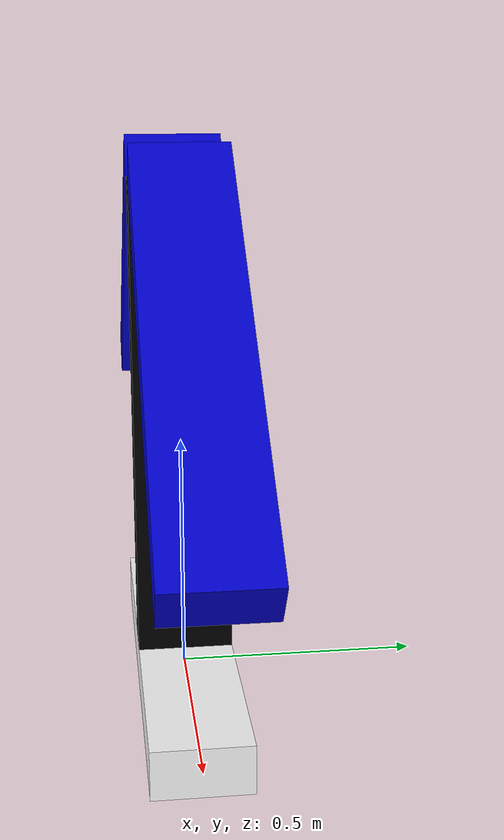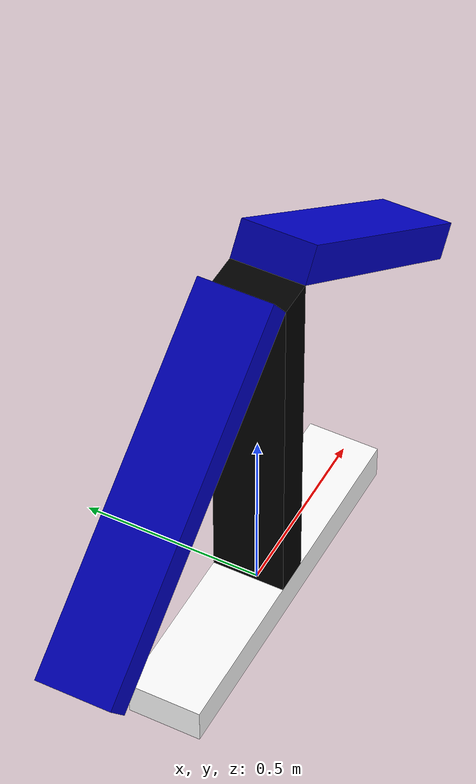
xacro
<?xml version="1.0"?>
<robot name="imagination" xmlns:xacro="http://ros.org/wiki/xacro">
  <xacro:property name="length" value="1.0" />
  <xacro:property name="height" value="0.1" />
  <xacro:property name="depth" value="0.2" />
  <xacro:property name="pi" value="3.1415" />

  <material name="blue">
    <color rgba="0 0 0.8 1"/>
  </material>

  <material name="black">
    <color rgba="0 0 0 1"/>
  </material>

  <material name="white">
    <color rgba="1 1 1 1"/>
  </material>

  <xacro:macro name="base_block" params="name color *position">
    <link name="${name}">
      <visual>
        <geometry>
          <box size="${length} ${depth} ${height}"/>
        </geometry>
        <xacro:insert_block name="position" />
        <material name="${color}"/>
      </visual>
    </link>
  </xacro:macro>

  <xacro:base_block name="base_link" color="white" >
    <origin rpy="0 0 0" xyz="0 0 0"/>
  </xacro:base_block>

  <xacro:base_block name="body" color="black" >
    <origin rpy="0 ${pi/2} 0" xyz="0 0 ${length/2+height/2}"/>
  </xacro:base_block>

  <xacro:base_block name="left_arm" color="blue" >
    <origin rpy="0 ${pi/2} 0" xyz="${-height/2} 0 ${length/2}"/>

  </xacro:base_block>

  <xacro:base_block name="right_arm" color="blue" >
    <origin rpy="0 ${pi/2} 0" xyz="${height/2} 0 ${length/2}"/>
  </xacro:base_block>

  <joint name="base_to_body" type="fixed">
    <parent link="base_link"/>
    <child link="body"/>
  </joint>

  <joint name="body_to_right_arm" type="revolute">
    <axis xyz="0 1 0"/>
    <limit effort="1000.0" lower="${pi}" upper="${5}" velocity="0.5"/>
    <origin rpy="0 0 0" xyz="${-height/2} 0 ${length+height/2}"/>
    <parent link="body"/>
    <child link="right_arm"/>
  </joint>

  <joint name="body_to_left_arm" type="revolute">
    <axis xyz="0 1 0"/>
    <limit effort="1000.0" lower="${-pi}" upper="${-5}" velocity="0.5"/>
    <origin rpy="0 0 0" xyz="${height/2} 0 ${length+height/2}"/>
    <parent link="body"/>
    <child link="left_arm"/>
  </joint>

</robot>
